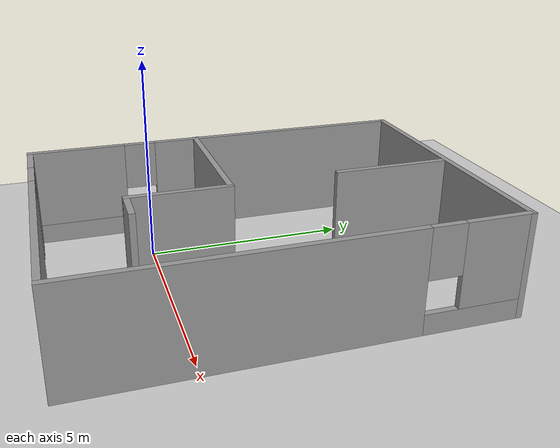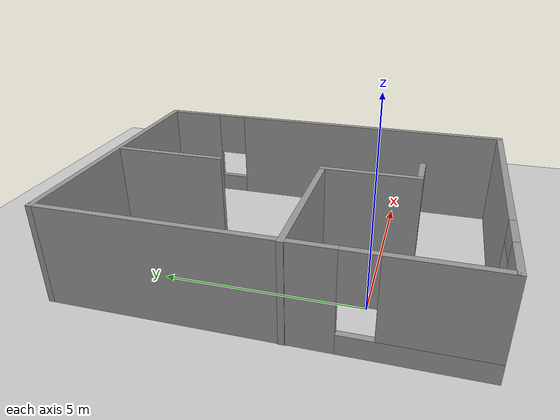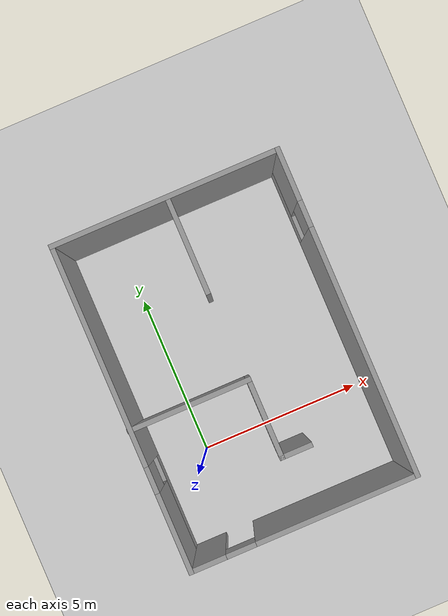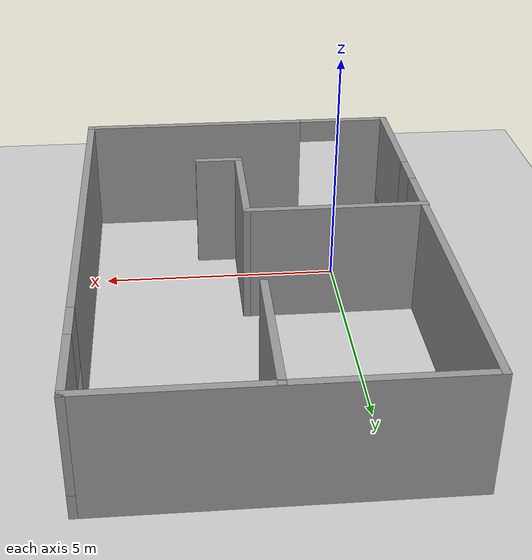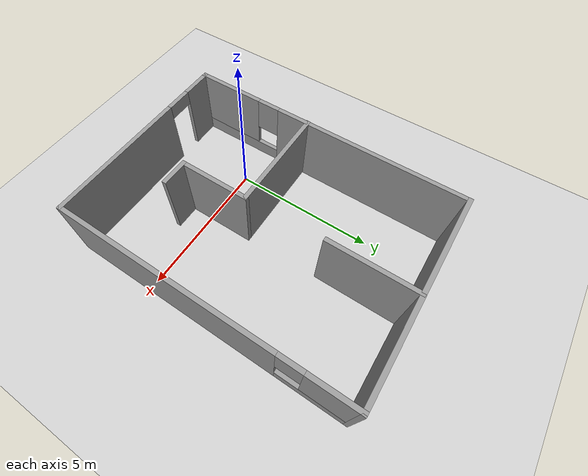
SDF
<sdf version="1.6">
 <world name="default">
  <light name="sun" type="directional">
   <pose>0 0 10 0 -0 0</pose>
   <diffuse>0.8 0.8 0.8 1</diffuse>
   <specular>0.1 0.1 0.1 1</specular>
   <attenuation>
    <range>1000</range>
    <constant>0.9</constant>
    <linear>0.01</linear>
    <quadratic>0.001</quadratic>
   </attenuation>
   <direction>-0.5 0.5 -1</direction>
  </light>
  <model name="ground_plane">
   <static>1</static>
   <link name="link">
    <collision name="collision">
     <geometry><plane><normal>0 0 1</normal><size>100 100</size></plane></geometry>
     <surface><friction><ode><mu>100</mu><mu2>50</mu2></ode></friction></surface>
    </collision>
    <visual name="visual">
     <cast_shadows>0</cast_shadows>
     <geometry><plane><normal>0 0 1</normal><size>100 100</size></plane></geometry>
     <material>
      <script><uri>file://media/materials/scripts/gazebo.material</uri><name>Gazebo/Grey</name></script>
     </material>
    </visual>
   </link>
  </model>
  <gravity>0 0 -9.8</gravity>
  <magnetic_field>6e-06 2.3e-05 -4.2e-05</magnetic_field>
  <atmosphere type="adiabatic"/>
  <physics name="default_physics" default="0" type="ode">
   <max_step_size>0.001</max_step_size>
   <real_time_factor>1</real_time_factor>
   <real_time_update_rate>1000</real_time_update_rate>
  </physics>
  <scene><ambient>0.4 0.4 0.4 1</ambient><background>0.7 0.7 0.7 1</background><shadows>1</shadows></scene>
  <spherical_coordinates>
   <surface_model>EARTH_WGS84</surface_model>
   <latitude_deg>0</latitude_deg>
   <longitude_deg>0</longitude_deg>
   <elevation>0</elevation>
   <heading_deg>0</heading_deg>
  </spherical_coordinates>
  <model name="irl_test">
   <pose>1.864 2.17741 0 0 -0 0</pose>
   <link name="Wall_10">
    <pose>3.43396 0 0 0 -0 1.5708</pose>
    <visual name="Wall_10_Visual_0">
     <pose>-1.21091 0 1.25 0 -0 0</pose>
     <geometry><box><size>7.57817 0.15 2.5</size></box></geometry>
     <material>
      <script><uri>file://media/materials/scripts/gazebo.material</uri><name>Gazebo/Grey</name></script>
      <ambient>1 1 1 1</ambient>
     </material>
    </visual>
    <collision name="Wall_10_Collision_0">
     <geometry><box><size>7.57817 0.15 2.5</size></box></geometry>
     <pose>-1.21091 0 1.25 0 -0 0</pose>
    </collision>
    <visual name="Wall_10_Visual_1">
     <pose>3.78909 0 0.25 0 -0 0</pose>
     <geometry><box><size>2.42183 0.15 0.5</size></box></geometry>
     <material>
      <script><uri>file://media/materials/scripts/gazebo.material</uri><name>Gazebo/Grey</name></script>
      <ambient>1 1 1 1</ambient>
     </material>
    </visual>
    <collision name="Wall_10_Collision_1">
     <geometry><box><size>2.42183 0.15 0.5</size></box></geometry>
     <pose>3.78909 0 0.25 0 -0 0</pose>
    </collision>
    <visual name="Wall_10_Visual_2">
     <pose>4.18909 0 1.5 0 -0 0</pose>
     <geometry><box><size>1.62183 0.15 2</size></box></geometry>
     <material>
      <script><uri>file://media/materials/scripts/gazebo.material</uri><name>Gazebo/Grey</name></script>
      <ambient>1 1 1 1</ambient>
     </material>
    </visual>
    <collision name="Wall_10_Collision_2">
     <geometry><box><size>1.62183 0.15 2</size></box></geometry>
     <pose>4.18909 0 1.5 0 -0 0</pose>
    </collision>
    <visual name="Wall_10_Visual_3">
     <pose>2.97817 0 1.9 0 -0 0</pose>
     <geometry><box><size>0.8 0.15 1.2</size></box></geometry>
     <material>
      <script><uri>file://media/materials/scripts/gazebo.material</uri><name>Gazebo/Grey</name></script>
      <ambient>1 1 1 1</ambient>
     </material>
    </visual>
    <collision name="Wall_10_Collision_3">
     <geometry><box><size>0.8 0.15 1.2</size></box></geometry>
     <pose>2.97817 0 1.9 0 -0 0</pose>
    </collision>
   </link>
   <link name="Wall_11">
    <collision name="Wall_11_Collision">
     <geometry><box><size>7 0.15 2.5</size></box></geometry>
     <pose>0 0 1.25 0 -0 0</pose>
    </collision>
    <visual name="Wall_11_Visual">
     <pose>0 0 1.25 0 -0 0</pose>
     <geometry><box><size>7 0.15 2.5</size></box></geometry>
     <material>
      <script><uri>file://media/materials/scripts/gazebo.material</uri><name>Gazebo/Grey</name></script>
      <ambient>1 1 1 1</ambient>
     </material>
    </visual>
    <pose>0.008956 4.925 0 0 -0 3.14159</pose>
   </link>
   <link name="Wall_12">
    <pose>-3.41604 0 0 0 0 -1.5708</pose>
    <visual name="Wall_12_Visual_0">
     <pose>-1.62217 0 1.25 0 -0 0</pose>
     <geometry><box><size>6.75566 0.15 2.5</size></box></geometry>
     <material>
      <script><uri>file://media/materials/scripts/gazebo.material</uri><name>Gazebo/Grey</name></script>
      <ambient>1 1 1 1</ambient>
     </material>
    </visual>
    <collision name="Wall_12_Collision_0">
     <geometry><box><size>6.75566 0.15 2.5</size></box></geometry>
     <pose>-1.62217 0 1.25 0 -0 0</pose>
    </collision>
    <visual name="Wall_12_Visual_1">
     <pose>3.37783 0 0.25 0 -0 0</pose>
     <geometry><box><size>3.24434 0.15 0.5</size></box></geometry>
     <material>
      <script><uri>file://media/materials/scripts/gazebo.material</uri><name>Gazebo/Grey</name></script>
      <ambient>1 1 1 1</ambient>
     </material>
    </visual>
    <collision name="Wall_12_Collision_1">
     <geometry><box><size>3.24434 0.15 0.5</size></box></geometry>
     <pose>3.37783 0 0.25 0 -0 0</pose>
    </collision>
    <visual name="Wall_12_Visual_2">
     <pose>3.77783 0 1.5 0 -0 0</pose>
     <geometry><box><size>2.44434 0.15 2</size></box></geometry>
     <material>
      <script><uri>file://media/materials/scripts/gazebo.material</uri><name>Gazebo/Grey</name></script>
      <ambient>1 1 1 1</ambient>
     </material>
    </visual>
    <collision name="Wall_12_Collision_2">
     <geometry><box><size>2.44434 0.15 2</size></box></geometry>
     <pose>3.77783 0 1.5 0 -0 0</pose>
    </collision>
    <visual name="Wall_12_Visual_3">
     <pose>2.15566 0 1.9 0 -0 0</pose>
     <geometry><box><size>0.8 0.15 1.2</size></box></geometry>
     <material>
      <script><uri>file://media/materials/scripts/gazebo.material</uri><name>Gazebo/Grey</name></script>
      <ambient>1 1 1 1</ambient>
     </material>
    </visual>
    <collision name="Wall_12_Collision_3">
     <geometry><box><size>0.8 0.15 1.2</size></box></geometry>
     <pose>2.15566 0 1.9 0 -0 0</pose>
    </collision>
   </link>
   <link name="Wall_14">
    <collision name="Wall_14_Collision">
     <geometry><box><size>3.75 0.15 2.5</size></box></geometry>
     <pose>0 0 1.25 0 -0 0</pose>
    </collision>
    <visual name="Wall_14_Visual">
     <pose>0 0 1.25 0 -0 0</pose>
     <geometry><box><size>3.75 0.15 2.5</size></box></geometry>
     <material>
      <script><uri>file://media/materials/scripts/gazebo.material</uri><name>Gazebo/Grey</name></script>
      <ambient>1 1 1 1</ambient>
     </material>
    </visual>
    <pose>-1.63396 -0.639452 0 0 -0 0</pose>
   </link>
   <link name="Wall_15">
    <collision name="Wall_15_Collision">
     <geometry><box><size>2.5 0.15 2.5</size></box></geometry>
     <pose>0 0 1.25 0 -0 0</pose>
    </collision>
    <visual name="Wall_15_Visual">
     <pose>0 0 1.25 0 -0 0</pose>
     <geometry><box><size>2.5 0.15 2.5</size></box></geometry>
     <material>
      <script><uri>file://media/materials/scripts/gazebo.material</uri><name>Gazebo/Grey</name></script>
      <ambient>1 1 1 1</ambient>
     </material>
    </visual>
    <pose>0.166043 -1.81445 0 0 0 -1.5708</pose>
   </link>
   <link name="Wall_16">
    <collision name="Wall_16_Collision">
     <geometry><box><size>1 0.15 2.5</size></box></geometry>
     <pose>0 0 1.25 0 -0 0</pose>
    </collision>
    <visual name="Wall_16_Visual">
     <pose>0 0 1.25 0 -0 0</pose>
     <geometry><box><size>1 0.15 2.5</size></box></geometry>
     <material>
      <script><uri>file://media/materials/scripts/gazebo.material</uri><name>Gazebo/Grey</name></script>
      <ambient>1 1 1 1</ambient>
     </material>
    </visual>
    <pose>0.591043 -2.98945 0 0 -0 0</pose>
   </link>
   <link name="Wall_19">
    <collision name="Wall_19_Collision">
     <geometry><box><size>3 0.15 2.5</size></box></geometry>
     <pose>0 0 1.25 0 -0 0</pose>
    </collision>
    <visual name="Wall_19_Visual">
     <pose>0 0 1.25 0 -0 0</pose>
     <geometry><box><size>3 0.15 2.5</size></box></geometry>
     <material>
      <script><uri>file://media/materials/scripts/gazebo.material</uri><name>Gazebo/Grey</name></script>
      <ambient>1 1 1 1</ambient>
     </material>
    </visual>
    <pose>0.073771 3.47989 0 0 0 -1.5708</pose>
   </link>
   <link name="Wall_9">
    <pose>0.008956 -4.925 0 0 -0 0</pose>
    <visual name="Wall_9_Visual_0">
     <pose>-2.92505 0 1.25 0 -0 0</pose>
     <geometry><box><size>1.1499 0.15 2.5</size></box></geometry>
     <material>
      <script><uri>file://media/materials/scripts/gazebo.material</uri><name>Gazebo/Grey</name></script>
      <ambient>1 1 1 1</ambient>
     </material>
    </visual>
    <collision name="Wall_9_Collision_0">
     <geometry><box><size>1.1499 0.15 2.5</size></box></geometry>
     <pose>-2.92505 0 1.25 0 -0 0</pose>
    </collision>
    <visual name="Wall_9_Visual_1">
     <pose>1.02495 0 1.25 0 -0 0</pose>
     <geometry><box><size>4.9501 0.15 2.5</size></box></geometry>
     <material>
      <script><uri>file://media/materials/scripts/gazebo.material</uri><name>Gazebo/Grey</name></script>
      <ambient>1 1 1 1</ambient>
     </material>
    </visual>
    <collision name="Wall_9_Collision_1">
     <geometry><box><size>4.9501 0.15 2.5</size></box></geometry>
     <pose>1.02495 0 1.25 0 -0 0</pose>
    </collision>
    <visual name="Wall_9_Visual_2">
     <pose>-1.9001 0 2.25 0 -0 0</pose>
     <geometry><box><size>0.9 0.15 0.5</size></box></geometry>
     <material>
      <script><uri>file://media/materials/scripts/gazebo.material</uri><name>Gazebo/Grey</name></script>
      <ambient>1 1 1 1</ambient>
     </material>
    </visual>
    <collision name="Wall_9_Collision_2">
     <geometry><box><size>0.9 0.15 0.5</size></box></geometry>
     <pose>-1.9001 0 2.25 0 -0 0</pose>
    </collision>
   </link>
   <static>1</static>
  </model>
 </world>
</sdf>
